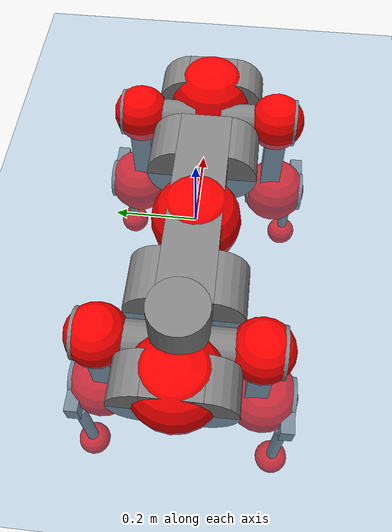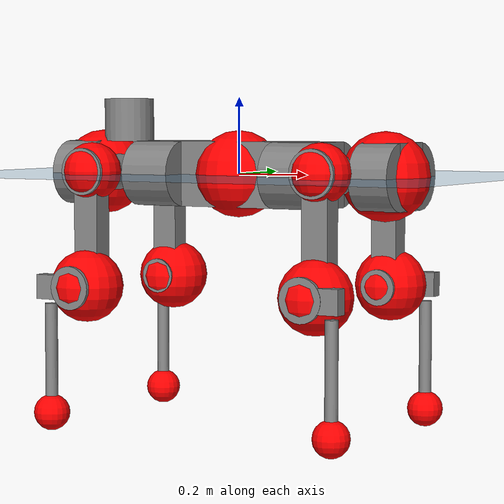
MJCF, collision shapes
<mujoco model="anymal_c">
  <compiler angle="radian" assetdir="assets" balanceinertia="true" inertiafromgeom="false"/>

  <option timestep="0.005" density="1.2" viscosity="2e-05"/>

  <size nkey="1"/>

  <visual>
    <quality shadowsize="8192"/>
    <map shadowclip="0.5"/>
  </visual>

  <default>
    <default class="/">
      <material specular="0" shininess="0.25"/>
      <geom contype="0" conaffinity="0" group="1" solref="-1000 -80"/>
      <site size="0.01 0.005 0.005" group="5"/>
      <general forcelimited="true" forcerange="-80 80" biastype="affine" gainprm="80" biasprm="0 -80 -2"/>
      <default class="anymal_c">
        <joint armature="0.01" damping="0.01" frictionloss="0.1"/>
        <default class="visual">
          <geom type="mesh" group="2"/>
          <default class="visual_zflip"/>
        </default>
        <default class="collision">
          <geom type="cylinder" group="3"/>
          <default class="foot">
            <geom size="0.03 0 0" type="sphere" condim="6" priority="1" friction="0.8 0.02 0.01" solimp="0.015 1 0.03"/>
          </default>
        </default>
      </default>
      <default class="reward_collision_sphere">
        <geom group="5" rgba="1 0 0 1"/>
      </default>
    </default>
  </default>

  <asset>
    <texture type="skybox" colorspace="auto" name="//unnamed_texture_0" builtin="gradient" rgb1="0.95 0.95 0.95" rgb2="0.95 0.95 0.95" width="100" height="600"/>
    <texture type="2d" colorspace="auto" name="texplane" builtin="checker" rgb1="0.345 0.575 0.748" rgb2="0.345 0.575 0.748" markrgb="1 1 1" width="512" height="512"/>
    <texture type="2d" colorspace="linear" name="base" file="base.png"/>
    <texture type="2d" colorspace="linear" name="top_shell" file="top_shell.png"/>
    <texture type="2d" colorspace="linear" name="bottom_shell" file="bottom_shell.png"/>
    <texture type="2d" colorspace="linear" name="remote" file="remote.png"/>
    <texture type="2d" colorspace="linear" name="hatch" file="hatch.png"/>
    <texture type="2d" colorspace="linear" name="handle" file="handle.png"/>
    <texture type="2d" colorspace="linear" name="face" file="face.png"/>
    <texture type="2d" colorspace="linear" name="battery" file="battery.png"/>
    <texture type="2d" colorspace="linear" name="lidar_cage" file="lidar_cage.png"/>
    <texture type="2d" colorspace="linear" name="depth_camera" file="depth_camera.png"/>
    <texture type="2d" colorspace="linear" name="wide_angle_camera" file="wide_angle_camera.png"/>
    <texture type="2d" colorspace="linear" name="lidar" file="lidar.png"/>
    <texture type="2d" colorspace="linear" name="drive" file="drive.png"/>
    <texture type="2d" colorspace="linear" name="hip_l" file="hip_l.png"/>
    <texture type="2d" colorspace="linear" name="shank_l" file="shank_l.png"/>
    <texture type="2d" colorspace="linear" name="foot" file="foot.png"/>
    <texture type="2d" colorspace="linear" name="thigh" file="thigh.png"/>
    <texture type="2d" colorspace="linear" name="shank_r" file="shank_r.png"/>
    <texture type="2d" colorspace="linear" name="hip_r" file="hip_r.png"/>
    <material name="MatPlane" class="/" texture="texplane" texuniform="true" texrepeat="2 2" specular="0.9" shininess="0.5"/>
    <material name="black_plastic" class="/" rgba="0.007 0.007 0.007 1"/>
    <material name="green" class="/" rgba="0.052 0.178 0.033 1"/>
    <material name="red" class="/" rgba="0.178 0.006 0.005 1"/>
    <material name="yellow" class="/" rgba="0.178 0.119 0.006 1"/>
    <material name="lwl" class="/" rgba="0.8 0.8 0.8 1"/>
    <material name="base" class="/" texture="base"/>
    <material name="top_shell" class="/" texture="top_shell"/>
    <material name="bottom_shell" class="/" texture="bottom_shell"/>
    <material name="hip_l" class="/" texture="hip_l"/>
    <material name="thigh" class="/" texture="thigh"/>
    <material name="shank_l" class="/" texture="shank_l"/>
    <material name="foot" class="/" texture="foot"/>
    <material name="hip_r" class="/" texture="hip_r"/>
    <material name="shank" class="/" texture="shank_r"/>
    <material name="hatch" class="/" texture="hatch"/>
    <material name="remote" class="/" texture="remote"/>
    <material name="handle" class="/" texture="handle"/>
    <material name="face" class="/" texture="face"/>
    <material name="depth_camera" class="/" texture="depth_camera"/>
    <material name="wide_angle_camera" class="/" texture="wide_angle_camera"/>
    <material name="battery" class="/" texture="battery"/>
    <material name="lidar_cage" class="/" texture="lidar_cage"/>
    <material name="lidar" class="/" texture="lidar"/>
    <material name="drive" class="/" texture="drive"/>
    <mesh name="base_0" class="/" file="base_0.obj"/>
    <mesh name="base_1" class="/" file="base_1.obj"/>
    <mesh name="base_2" class="/" file="base_2.obj"/>
    <mesh name="base_3" class="/" file="base_3.obj"/>
    <mesh name="base_4" class="/" file="base_4.obj"/>
    <mesh name="base_5" class="/" file="base_5.obj"/>
    <mesh name="top_shell" class="/" file="top_shell.obj"/>
    <mesh name="bottom_shell" class="/" file="bottom_shell.obj"/>
    <mesh name="remote" class="/" file="remote.obj"/>
    <mesh name="handle" class="/" file="handle.obj"/>
    <mesh name="face" class="/" file="face.obj"/>
    <mesh name="wide_angle_camera" class="/" file="wide_angle_camera.obj"/>
    <mesh name="depth_camera" class="/" file="depth_camera.obj"/>
    <mesh name="battery" class="/" file="battery.obj"/>
    <mesh name="lidar_cage" class="/" file="lidar_cage.obj"/>
    <mesh name="lidar" class="/" file="lidar.obj"/>
    <mesh name="drive" class="/" file="drive.obj"/>
    <mesh name="hip_l" class="/" file="hip_l.obj"/>
    <mesh name="thigh" class="/" file="thigh.obj"/>
    <mesh name="shank_l" class="/" file="shank_l.obj"/>
    <mesh name="foot" class="/" file="foot.obj"/>
    <mesh name="hip_r" class="/" file="hip_r.obj"/>
    <mesh name="hatch" class="/" file="hatch.obj"/>
    <mesh name="shank_r" class="/" file="shank_r.obj"/>
  </asset>

  <worldbody>
    <geom name="floor" class="/" size="100 100 0.125" type="plane" group="0" material="MatPlane"/>
    <light name="toplight_shadow" class="/" pos="0 0 5" dir="0.0990148 0.0990148 -0.990148" type="directional" ambient="0.04 0.04 0.04" diffuse="0.55 0.55 0.55" specular="0.12 0.12 0.12"/>
    <light name="toplight_fill" class="/" pos="0 0 5" dir="0.0990148 0.0990148 -0.990148" type="directional" castshadow="false" ambient="0.04 0.04 0.04" diffuse="0.3 0.3 0.3" specular="0.08 0.08 0.08"/>
    <body name="trunk" childclass="anymal_c" pos="-0.0012908 -0.000177938 0.00010736" quat="1 -2.00454e-05 -0.000336474 0.000174599">
      <inertial pos="0.0020517 -6.62529e-05 0.0522261" quat="0.500002 0.507603 0.494082 0.498217" mass="16.266" diaginertia="0.494379 0.268822 0.292836"/>
      <joint name="//unnamed_joint_0" type="free" armature="0" damping="0" frictionloss="0"/>
      <geom name="//unnamed_geom_1" class="visual" material="green" mesh="base_0"/>
      <geom name="//unnamed_geom_2" class="visual" material="yellow" mesh="base_1"/>
      <geom name="//unnamed_geom_3" class="visual" material="red" mesh="base_2"/>
      <geom name="//unnamed_geom_4" class="visual" material="black_plastic" mesh="base_3"/>
      <geom name="//unnamed_geom_5" class="visual" material="lwl" mesh="base_4"/>
      <geom name="//unnamed_geom_6" class="visual" material="base" mesh="base_5"/>
      <geom name="trunk_1" class="collision" size="0.27502 0.0663841 0.0853509" type="box"/>
      <geom name="trunk_2" class="collision" size="0.0853509 0.0687549" pos="0.205514 0.0590827 0" quat="0.707107 0 0.707107 0"/>
      <geom name="trunk_3" class="collision" size="0.0853509 0.0687549" pos="-0.205514 0.0590827 0" quat="0.707107 0 0.707107 0"/>
      <geom name="trunk_4" class="collision" size="0.0853509 0.0687549" pos="0.205514 -0.0590827 0" quat="0.707107 0 0.707107 0"/>
      <geom name="trunk_5" class="collision" size="0.0853509 0.0687549" pos="-0.205514 -0.0590827 0" quat="0.707107 0 0.707107 0"/>
      <geom name="//unnamed_geom_12" class="visual" material="top_shell" mesh="top_shell"/>
      <geom name="//unnamed_geom_13" class="visual" material="bottom_shell" mesh="bottom_shell"/>
      <geom name="//unnamed_geom_14" class="visual" material="remote" mesh="remote"/>
      <geom name="//unnamed_geom_15" class="visual" material="handle" mesh="handle"/>
      <geom name="//unnamed_geom_16" class="visual" pos="0.391657 0 0" quat="1 0 0 0" material="face" mesh="face"/>
      <geom name="trunk_6" class="collision" size="0.0521589 0.0663841 0.0853509" pos="0.443626 0 0" type="box"/>
      <geom name="//unnamed_geom_18" class="collision" size="0.0853509 0.0521589" pos="0.443626 0.0590827 0" quat="0.707107 0 0.707107 0"/>
      <geom name="//unnamed_geom_19" class="collision" size="0.0853509 0.0521589" pos="0.443626 -0.0590827 0" quat="0.707107 0 0.707107 0"/>
      <geom name="//unnamed_geom_20" class="visual" pos="0.436213 0 -0.0316834" quat="0.965926 0 0.258819 0" material="depth_camera" mesh="depth_camera"/>
      <geom name="//unnamed_geom_21" class="visual" pos="0.484729 0 0.0158098" material="wide_angle_camera" mesh="wide_angle_camera"/>
      <geom name="//unnamed_geom_22" class="visual_zflip" pos="-0.391657 0 0" quat="0 0 0 1" material="face" mesh="face"/>
      <geom name="trunk_7" class="collision" size="0.0521589 0.0663841 0.0853509" pos="-0.443626 0 0" quat="0 0 0 1" type="box"/>
      <geom name="//unnamed_geom_24" class="collision" size="0.0853509 0.0521589" pos="-0.443626 -0.0590827 0" quat="0 -0.707107 0 0.707107"/>
      <geom name="//unnamed_geom_25" class="collision" size="0.0853509 0.0521589" pos="-0.443626 0.0590827 0" quat="0 -0.707107 0 0.707107"/>
      <geom name="//unnamed_geom_26" class="visual" pos="-0.436213 0 -0.0316834" quat="0 -0.258819 0 0.965926" material="depth_camera" mesh="depth_camera"/>
      <geom name="//unnamed_geom_27" class="visual_zflip" pos="-0.484729 0 0.0158098" quat="0 0 0 1" material="wide_angle_camera" mesh="wide_angle_camera"/>
      <geom name="//unnamed_geom_28" class="visual" material="battery" mesh="battery"/>
      <geom name="//unnamed_geom_29" class="visual" pos="0 0.0632165 0.0298345" quat="0.683013 -0.183013 0.183013 0.683013" material="depth_camera" mesh="depth_camera"/>
      <geom name="//unnamed_geom_30" class="visual" pos="0 -0.0632165 0.0298345" quat="0.683013 0.183013 0.183013 -0.683013" material="depth_camera" mesh="depth_camera"/>
      <geom name="//unnamed_geom_31" class="visual" pos="-0.34394 0 0.0776235" quat="1 0 0 0" material="lidar_cage" mesh="lidar_cage"/>
      <geom name="trunk_8" class="collision" size="0.0663841 0.0569006" pos="-0.34394 0 0.14099"/>
      <geom name="//unnamed_geom_33" class="visual" pos="-0.34394 -3.96218e-05 0.150178" quat="0.707107 0 0 -0.707107" material="lidar" mesh="lidar"/>
      <geom name="//unnamed_geom_34" class="visual" pos="0.283373 0.0878554 -3.6581e-09" quat="0.258819 0.965926 0 0" material="drive" mesh="drive"/>
      <geom name="//unnamed_geom_35" class="visual" pos="0.283373 -0.0878554 3.6581e-09" quat="0.258819 -0.965926 0 0" material="drive" mesh="drive"/>
      <geom name="//unnamed_geom_36" class="visual" pos="-0.283373 0.0878554 3.6581e-09" quat="0 0 0.965926 -0.258819" material="drive" mesh="drive"/>
      <geom name="//unnamed_geom_37" class="visual" pos="-0.283373 -0.0878554 -3.6581e-09" quat="0 0 -0.965926 -0.258819" material="drive" mesh="drive"/>
      <geom name="//unnamed_geom_38" class="visual" pos="0.109607 0 0.0770954" quat="1 0 0 0" material="hatch" mesh="hatch"/>
      <geom name="//unnamed_geom_39" class="reward_collision_sphere" size="0.113801"/>
      <geom name="//unnamed_geom_40" class="reward_collision_sphere" size="0.113801" pos="0.425201 0 0"/>
      <geom name="//unnamed_geom_41" class="reward_collision_sphere" size="0.113801" pos="-0.425201 0 0"/>
      <site name="imu" pos="0.236209 -0.00599388 0.0534484" size="0.00948344"/>
      <camera name="track" pos="0 -1.68808 0" quat="0.707107 0.707107 0 0" mode="trackcom"/>
      <camera name="ego_camera" pos="0.425201 0 -0.0422441" quat="-0.5 -0.5 0.5 0.5"/>
      <body name="LF_HIP" pos="0.283876 0.0885785 -0.000359359" quat="0.25896 0.965887 -7.44237e-05 0.0013874">
        <inertial pos="0.0536693 -0.0120683 -0.00760231" quat="-0.134238 0.709756 -0.137897 0.677651" mass="2.44659" diaginertia="0.00455401 0.0021686 0.00445425"/>
        <joint name="LF_HAA" pos="0 0 0" axis="0.999987 -0.00360801 -0.00372348" range="-0.67107 0.490905" armature="0.0102643" damping="0.0117704" frictionloss="0.0962678"/>
        <geom name="//unnamed_geom_42" class="visual" pos="0 -0.000215189 3.53447e-05" quat="0.258819 -0.965926 0 0" material="hip_l" mesh="hip_l"/>
        <geom name="//unnamed_geom_43" class="visual" pos="0.056599 -0.0673291 -0.040441" quat="0.183013 -0.683013 0.683013 0.183013" material="drive" mesh="drive"/>
        <geom name="//unnamed_geom_44" class="collision" size="0.0474172 0.0663841" pos="0.0565989 -0.0100945 -0.00729238" quat="-0.353553 -0.612372 0.612372 -0.353553"/>
        <body name="LF_THIGH" pos="0.0569366 -0.0618297 -0.0432486" quat="0.182958 -0.682914 0.68317 0.182847">
          <inertial pos="0.0290785 -0.00234925 -0.262028" quat="0.992848 -0.00827876 -0.0848424 0.0835827" mass="2.65331" diaginertia="0.022786 0.012857 0.00548542"/>
          <joint name="LF_HFE" pos="0 0 0" axis="0.999998 -0.00095368 -0.00190615" range="-3.14095 3.19053" armature="0.00949865" damping="0" frictionloss="0.0952427"/>
          <geom name="//unnamed_geom_45" class="visual" pos="0.00200655 3.16185e-06 0" quat="0.707107 0 0 -0.707107" material="thigh" mesh="thigh"/>
          <geom name="//unnamed_geom_46" class="collision" size="0.0616423 0.0379338" pos="0.0377956 0 0" quat="0.5 0.5 -0.5 -0.5"/>
          <geom name="//unnamed_geom_47" class="collision" size="0.0355629 0.0284503 0.134014" pos="0.0283467 0 -0.149242" quat="0.707107 0 0 -0.707107" type="box"/>
          <geom name="//unnamed_geom_48" class="visual" pos="0.0947725 0 -0.300989" quat="1 0 0 0" material="drive" mesh="drive"/>
          <geom name="//unnamed_geom_49" class="collision" size="0.0474172 0.0663841" pos="0.0286302 0 -0.300989" quat="0.707107 0 0.707107 0"/>
          <geom name="//unnamed_geom_50" class="reward_collision_sphere" size="0.0758675" pos="0.0236223 0 0"/>
          <body name="LF_SHANK" pos="0.0972789 0.00204604 -0.299735" quat="1 -3.79317e-05 -2.22756e-05 5.57916e-05">
            <inertial pos="0.00612704 -0.0518679 -0.0841606" quat="0.992945 -0.115717 -0.0002022 -0.0258894" mass="0.516685" diaginertia="0.0077585 0.00399986 0.00147355"/>
            <joint name="LF_KFE" pos="0 0 0" axis="0.999999 0.00102335 0.000722766" range="-3.12153 3.09459" armature="0.00942556" damping="0.0094845" frictionloss="0.094599"/>
            <geom name="//unnamed_geom_51" class="visual" pos="0.000654291 0.00348871 0" quat="0.707107 0 0 -0.707107" material="shank_l" mesh="shank_l"/>
            <geom name="LF_kfe_act" class="collision" size="0.0569006 0.0189669" pos="0.0188978 0 0" quat="0.5 0.5 -0.5 -0.5"/>
            <geom name="//unnamed_geom_53" class="collision" size="0.0545288 0.0320066 0.0180185" pos="0.0188978 -0.0485314 0" quat="0.5 0.5 -0.5 -0.5" type="box"/>
            <geom name="//unnamed_geom_54" class="visual" pos="0.0123307 -0.073109 -0.356931" quat="0.382683 0 0 -0.92388" material="foot" mesh="foot"/>
            <geom name="LF_calf" class="collision" size="0.016596 0.133955" pos="0.0123308 -0.0742333 -0.178465" quat="0.707107 0 0 -0.707107"/>
            <geom name="LF_foot" class="foot" size="0.0270949" pos="0.0123308 -0.0742333 -0.333168" quat="0.707107 0 0 -0.707107"/>
            <geom name="//unnamed_geom_57" class="reward_collision_sphere" size="0.0948344" pos="-0.0472445 0 0"/>
            <geom name="//unnamed_geom_58" class="reward_collision_sphere" size="0.0474172" pos="0.0123308 -0.0742333 -0.333168"/>
            <site name="LF_foot" class="foot" pos="0.0123308 -0.0742333 -0.333168" quat="0.707107 0 0 -0.707107" size="0.00948344"/>
          </body>
        </body>
      </body>
      <body name="RF_HIP" pos="0.283976 -0.0884304 0.00266048" quat="0.258971 -0.965885 -9.58543e-05 1.68765e-05">
        <inertial pos="0.054648 0.0124427 -0.00889532" quat="0.131604 0.683946 0.117611 0.70786" mass="2.44239" diaginertia="0.0045514 0.00215581 0.00442561"/>
        <joint name="RF_HAA" pos="0 0 0" axis="1 0.000934724 0.000228763" range="-0.465106 0.732086" armature="0.00957019" damping="0.00915825" frictionloss="0.0901477"/>
        <geom name="//unnamed_geom_59" class="visual" pos="0 0.000215188 3.53446e-05" quat="0.258819 0.965926 0 0" material="hip_r" mesh="hip_r"/>
        <geom name="//unnamed_geom_60" class="visual" pos="0.0565989 0.0673291 -0.040441" quat="0.183013 0.683013 0.683013 -0.183013" material="drive" mesh="drive"/>
        <geom name="//unnamed_geom_61" class="collision" size="0.0474172 0.0663841" pos="0.0565989 0.0100945 -0.00729238" quat="-0.353553 0.612372 0.612372 0.353553"/>
        <body name="RF_THIGH" pos="0.0567308 0.0617528 -0.0463867" quat="0.183276 0.683065 0.682967 -0.182726">
          <inertial pos="0.0289534 -0.000121915 -0.261765" quat="0.992902 0.00713924 -0.0829192 0.0849644" mass="2.66566" diaginertia="0.0234885 0.0131947 0.00566662"/>
          <joint name="RF_HFE" pos="0 0 0" axis="1 -0.000130091 -0.000271298" stiffness="0.00541137" range="-3.1926 3.17554" armature="0.00868823" damping="0.0101298" frictionloss="0.0906885"/>
          <geom name="//unnamed_geom_62" class="visual" pos="0.00200655 3.16185e-06 0" quat="0.707107 0 0 -0.707107" material="thigh" mesh="thigh"/>
          <geom name="//unnamed_geom_63" class="collision" size="0.0616423 0.0379338" pos="0.0377956 0 0" quat="0.5 0.5 0.5 0.5"/>
          <geom name="//unnamed_geom_64" class="collision" size="0.0355629 0.0284503 0.134014" pos="0.0283467 0 -0.149242" quat="0.707107 0 0 0.707107" type="box"/>
          <geom name="//unnamed_geom_65" class="visual" pos="0.0947725 0 -0.300989" quat="1 0 0 0" material="drive" mesh="drive"/>
          <geom name="//unnamed_geom_66" class="collision" size="0.0474172 0.0663841" pos="0.0286302 0 -0.300989" quat="0.707107 0 0.707107 0"/>
          <geom name="//unnamed_geom_67" class="reward_collision_sphere" size="0.0758675" pos="0.0236223 0 0"/>
          <body name="RF_SHANK" pos="0.0948253 0.000625994 -0.301593" quat="1 -1.45151e-06 1.80087e-05 2.84232e-05">
            <inertial pos="0.00451966 0.052123 -0.0824321" quat="0.993009 0.115327 -0.000882954 0.0251453" mass="0.475389" diaginertia="0.00734376 0.00395355 0.00138056"/>
            <joint name="RF_KFE" pos="0 0 0" axis="0.999997 0.0020083 -0.00138706" range="-3.12328 3.13502" armature="0.0102019" damping="0.00920597" frictionloss="0.0951332"/>
            <geom name="//unnamed_geom_68" class="visual" pos="0.000654287 -0.0034887 0" quat="0.707107 0 0 0.707107" material="shank" mesh="shank_r"/>
            <geom name="RF_kfe_act" class="collision" size="0.0569006 0.0189669" pos="0.0188978 0 0" quat="0.5 0.5 0.5 0.5"/>
            <geom name="//unnamed_geom_70" class="collision" size="0.0545288 0.0320066 0.0180185" pos="0.0188978 0.0485314 0" quat="0.5 0.5 0.5 0.5" type="box"/>
            <geom name="//unnamed_geom_71" class="visual" pos="0.012331 0.073109 -0.356931" quat="0.382683 0 0 0.92388" material="foot" mesh="foot"/>
            <geom name="RF_calf" class="collision" size="0.016596 0.133955" pos="0.0123308 0.0742333 -0.178465" quat="0.707107 0 0 0.707107"/>
            <geom name="RF_foot" class="foot" size="0.0279996" pos="0.0123308 0.0742333 -0.333168" quat="0.707107 0 0 0.707107"/>
            <geom name="//unnamed_geom_74" class="reward_collision_sphere" size="0.0948344" pos="-0.0472445 0 0"/>
            <geom name="//unnamed_geom_75" class="reward_collision_sphere" size="0.0474172" pos="0.0123308 0.0742333 -0.333168"/>
            <site name="RF_foot" class="foot" pos="0.0123308 0.0742333 -0.333168" quat="0.707107 0 0 0.707107" size="0.00948344"/>
          </body>
        </body>
      </body>
      <body name="LH_HIP" pos="-0.282778 0.088483 -0.00159445" quat="0.00014197 -0.000152191 0.965925 -0.258821">
        <inertial pos="0.0533783 0.0122568 -0.0112197" quat="0.135158 0.679188 0.127704 0.71002" mass="2.44013" diaginertia="0.00452861 0.00207911 0.00434553"/>
        <joint name="LH_HAA" pos="0 0 0" axis="1 0.000570558 -0.000626495" range="-0.441555 0.770429" armature="0.00953086" damping="0.00580994" frictionloss="0.106055"/>
        <geom name="//unnamed_geom_76" class="visual" pos="0 0.000215188 3.53446e-05" quat="-0.258819 -0.965926 0 0" material="hip_r" mesh="hip_r"/>
        <geom name="//unnamed_geom_77" class="visual" pos="0.0565989 0.0673291 -0.040441" quat="0.183013 0.683013 0.683013 -0.183013" material="drive" mesh="drive"/>
        <geom name="//unnamed_geom_78" class="collision" size="0.0474172 0.0663841" pos="0.0565989 0.0100945 -0.00729238" quat="-0.353553 0.612372 0.612372 0.353553"/>
        <body name="LH_THIGH" pos="0.0563863 0.0619977 -0.0455351" quat="0.182884 0.683149 0.68295 -0.182868">
          <inertial pos="0.0269183 -0.00026724 -0.261875" quat="0.991795 0.00306668 -0.0874993 0.0931496" mass="2.61636" diaginertia="0.0218849 0.0127345 0.00528748"/>
          <joint name="LH_HFE" pos="0 0 0" axis="0.999914 0.0120153 0.00529839" range="-3.18931 3.15619" armature="0.00908941" damping="0.00301122" frictionloss="0.0954665"/>
          <geom name="//unnamed_geom_79" class="visual" pos="0.00200655 3.16185e-06 0" quat="0.707107 0 0 -0.707107" material="thigh" mesh="thigh"/>
          <geom name="//unnamed_geom_80" class="collision" size="0.0616423 0.0379338" pos="0.0377956 0 0" quat="0.5 0.5 -0.5 -0.5"/>
          <geom name="//unnamed_geom_81" class="collision" size="0.0355629 0.0284503 0.134014" pos="0.0283467 0 -0.149242" quat="0.707107 0 0 -0.707107" type="box"/>
          <geom name="//unnamed_geom_82" class="visual" pos="0.0947725 0 -0.300989" quat="1 0 0 0" material="drive" mesh="drive"/>
          <geom name="//unnamed_geom_83" class="collision" size="0.0474172 0.0663841" pos="0.0286302 0 -0.300989" quat="0.707107 0 0.707107 0"/>
          <geom name="//unnamed_geom_84" class="reward_collision_sphere" size="0.0758675" pos="0.0236223 0 0"/>
          <body name="LH_SHANK" pos="0.0944713 -0.00133461 -0.302765" quat="1 -0.000214227 0.000111772 -0.000389911">
            <inertial pos="0.00545732 0.0509952 -0.0842504" quat="0.993458 0.112644 -0.00532154 0.018004" mass="0.491598" diaginertia="0.00763361 0.00391445 0.00148583"/>
            <joint name="LH_KFE" pos="0 0 0" axis="0.99999 -0.00359798 0.00259483" range="-3.16493 3.14187" armature="0.00959757" damping="0.00655486" frictionloss="0.0968067"/>
            <geom name="//unnamed_geom_85" class="visual" pos="0.000654287 -0.0034887 0" quat="-0.707107 0 0 -0.707107" material="shank" mesh="shank_r"/>
            <geom name="LH_kfe_act" class="collision" size="0.0569006 0.0189669" pos="0.0188978 0 0" quat="0.5 0.5 -0.5 -0.5"/>
            <geom name="//unnamed_geom_87" class="collision" size="0.0545288 0.0320066 0.0180185" pos="0.0188978 0.0485314 0" quat="0.5 0.5 -0.5 -0.5" type="box"/>
            <geom name="//unnamed_geom_88" class="visual" pos="0.012331 0.073109 -0.356931" quat="-0.382683 0 0 -0.92388" material="foot" mesh="foot"/>
            <geom name="LH_calf" class="collision" size="0.016596 0.133955" pos="0.0123308 0.0742333 -0.178465" quat="0.707107 0 0 -0.707107"/>
            <geom name="LH_foot" class="foot" size="0.0317249" pos="0.0123308 0.0742333 -0.333168" quat="0.707107 0 0 -0.707107"/>
            <geom name="//unnamed_geom_91" class="reward_collision_sphere" size="0.0948344" pos="-0.0472445 0 0"/>
            <geom name="//unnamed_geom_92" class="reward_collision_sphere" size="0.0474172" pos="0.0123308 0.0742333 -0.333168"/>
            <site name="LH_foot" class="foot" pos="0.0123308 0.0742333 -0.333168" quat="0.707107 0 0 -0.707107" size="0.00948344"/>
          </body>
        </body>
      </body>
      <body name="RH_HIP" pos="-0.283292 -0.086557 0.000698502" quat="0.000425133 -0.000222405 -0.965978 -0.258624">
        <inertial pos="0.0535524 -0.0107292 -0.0103228" quat="-0.127995 0.709954 -0.135361 0.679161" mass="2.27941" diaginertia="0.00429342 0.00205588 0.00417537"/>
        <joint name="RH_HAA" pos="0 0 0" axis="0.999983 -0.00258209 -0.00513373" range="-0.741224 0.455626" armature="0.00938164" damping="0" frictionloss="0.0904942"/>
        <geom name="//unnamed_geom_93" class="visual" pos="0 -0.000215189 3.53447e-05" quat="-0.258819 0.965926 0 0" material="hip_l" mesh="hip_l"/>
        <geom name="//unnamed_geom_94" class="visual" pos="0.056599 -0.0673291 -0.040441" quat="-0.183013 0.683013 -0.683013 -0.183013" material="drive" mesh="drive"/>
        <geom name="//unnamed_geom_95" class="collision" size="0.0474172 0.0663841" pos="0.0565989 -0.0100945 -0.00729238" quat="0.353553 0.612372 -0.612372 0.353553"/>
        <body name="RH_THIGH" pos="0.0556443 -0.060837 -0.0419027" quat="-0.183099 0.683158 -0.682871 -0.182911">
          <inertial pos="0.0288376 0.00119835 -0.259403" quat="0.993117 -0.00575018 -0.0808234 0.0845729" mass="2.49325" diaginertia="0.0221103 0.0124358 0.00548951"/>
          <joint name="RH_HFE" pos="0 0 0" axis="0.99999 0.00179877 0.00420309" stiffness="0.00358182" range="-3.19041 3.19109" armature="0.00962141" damping="0.00699209" frictionloss="0.0854443"/>
          <geom name="//unnamed_geom_96" class="visual" pos="0.00200655 3.16185e-06 0" quat="0.707107 0 0 -0.707107" material="thigh" mesh="thigh"/>
          <geom name="//unnamed_geom_97" class="collision" size="0.0616423 0.0379338" pos="0.0377956 0 0" quat="0.5 0.5 0.5 0.5"/>
          <geom name="//unnamed_geom_98" class="collision" size="0.0355629 0.0284503 0.134014" pos="0.0283467 0 -0.149242" quat="0.707107 0 0 0.707107" type="box"/>
          <geom name="//unnamed_geom_99" class="visual" pos="0.0947725 0 -0.300989" quat="1 0 0 0" material="drive" mesh="drive"/>
          <geom name="//unnamed_geom_100" class="collision" size="0.0474172 0.0663841" pos="0.0286302 0 -0.300989" quat="0.707107 0 0.707107 0"/>
          <geom name="//unnamed_geom_101" class="reward_collision_sphere" size="0.0758675" pos="0.0236223 0 0"/>
          <body name="RH_SHANK" pos="0.0967184 -4.39776e-05 -0.300367" quat="1 0.000237388 -0.000328724 0.000129077">
            <inertial pos="0.00432087 -0.0515105 -0.0852209" quat="0.992976 -0.115317 -0.00027959 -0.0264515" mass="0.485999" diaginertia="0.00763689 0.00388611 0.00146217"/>
            <joint name="RH_KFE" pos="0 0 0" axis="0.999981 -0.00604815 -0.00114492" range="-3.13162 3.1429" armature="0.00963314" damping="0" frictionloss="0.0954155"/>
            <geom name="//unnamed_geom_102" class="visual" pos="0.000654291 0.00348871 0" quat="0.707107 0 0 -0.707107" material="shank_l" mesh="shank_l"/>
            <geom name="RH_kfe_act" class="collision" size="0.0569006 0.0189669" pos="0.0188978 0 0" quat="0.5 0.5 0.5 0.5"/>
            <geom name="//unnamed_geom_104" class="collision" size="0.0545288 0.0320066 0.0180185" pos="0.0188978 -0.0485314 0" quat="0.5 0.5 0.5 0.5" type="box"/>
            <geom name="//unnamed_geom_105" class="visual" pos="0.0123307 -0.073109 -0.356931" quat="0.382683 0 0 -0.92388" material="foot" mesh="foot"/>
            <geom name="RH_calf" class="collision" size="0.016596 0.133955" pos="0.0123308 -0.0742333 -0.178465" quat="0.707107 0 0 0.707107"/>
            <geom name="RH_foot" class="foot" size="0.0295842" pos="0.0123308 -0.0742333 -0.333168" quat="0.707107 0 0 0.707107"/>
            <geom name="//unnamed_geom_108" class="reward_collision_sphere" size="0.0948344" pos="-0.0472445 0 0"/>
            <geom name="//unnamed_geom_109" class="reward_collision_sphere" size="0.0474172" pos="0.0123308 -0.0742333 -0.333168"/>
            <site name="RH_foot" class="foot" pos="0.0123308 -0.0742333 -0.333168" quat="0.707107 0 0 0.707107" size="0.00948344"/>
          </body>
        </body>
      </body>
    </body>
  </worldbody>

  <contact>
    <pair class="/" geom1="floor" geom2="LF_foot" name="//unnamed_contact_0"/>
    <pair class="/" geom1="floor" geom2="RF_foot" name="//unnamed_contact_1"/>
    <pair class="/" geom1="floor" geom2="LH_foot" name="//unnamed_contact_2"/>
    <pair class="/" geom1="floor" geom2="RH_foot" name="//unnamed_contact_3"/>
  </contact>

  <actuator>
    <general name="LF_HAA" class="/" joint="LF_HAA" forcerange="-73.2455 73.2455" gainprm="75.8781" biasprm="0 -75.8781 -2.00227"/>
    <general name="LF_HFE" class="/" joint="LF_HFE" forcerange="-82.1202 82.1202" gainprm="75.8781" biasprm="0 -75.8781 -2.00227"/>
    <general name="LF_KFE" class="/" joint="LF_KFE" forcerange="-69.5073 69.5073" gainprm="75.8781" biasprm="0 -75.8781 -2.00227"/>
    <general name="RF_HAA" class="/" joint="RF_HAA" forcerange="-76.8311 76.8311" gainprm="75.8781" biasprm="0 -75.8781 -2.00227"/>
    <general name="RF_HFE" class="/" joint="RF_HFE" forcerange="-79.9578 79.9578" gainprm="75.8781" biasprm="0 -75.8781 -2.00227"/>
    <general name="RF_KFE" class="/" joint="RF_KFE" forcerange="-83.2115 83.2115" gainprm="75.8781" biasprm="0 -75.8781 -2.00227"/>
    <general name="LH_HAA" class="/" joint="LH_HAA" forcerange="-83.2814 83.2814" gainprm="75.8781" biasprm="0 -75.8781 -2.00227"/>
    <general name="LH_HFE" class="/" joint="LH_HFE" forcerange="-76.5816 76.5816" gainprm="75.8781" biasprm="0 -75.8781 -2.00227"/>
    <general name="LH_KFE" class="/" joint="LH_KFE" forcerange="-76.7854 76.7854" gainprm="75.8781" biasprm="0 -75.8781 -2.00227"/>
    <general name="RH_HAA" class="/" joint="RH_HAA" forcerange="-75.9755 75.9755" gainprm="75.8781" biasprm="0 -75.8781 -2.00227"/>
    <general name="RH_HFE" class="/" joint="RH_HFE" forcerange="-68.7787 68.7787" gainprm="75.8781" biasprm="0 -75.8781 -2.00227"/>
    <general name="RH_KFE" class="/" joint="RH_KFE" forcerange="-70.7665 70.7665" gainprm="75.8781" biasprm="0 -75.8781 -2.00227"/>
  </actuator>

  <sensor>
    <gyro site="imu" name="imu_angular_velocity"/>
    <velocimeter site="imu" name="imu_linear_velocity"/>
    <framelinvel objtype="site" objname="LF_foot" name="LF_foot_global_linear_velocity"/>
    <framelinvel objtype="site" objname="RF_foot" name="RF_foot_global_linear_velocity"/>
    <framelinvel objtype="site" objname="LH_foot" name="LH_foot_global_linear_velocity"/>
    <framelinvel objtype="site" objname="RH_foot" name="RH_foot_global_linear_velocity"/>
  </sensor>

  <keyframe>
    <key name="home" qpos="0 0 0.55 1 0 0 0 0 0.4 -0.8 0 -0.4 0.8 0 -0.4 0.8 0 0.4 -0.8"/>
  </keyframe>
</mujoco>
